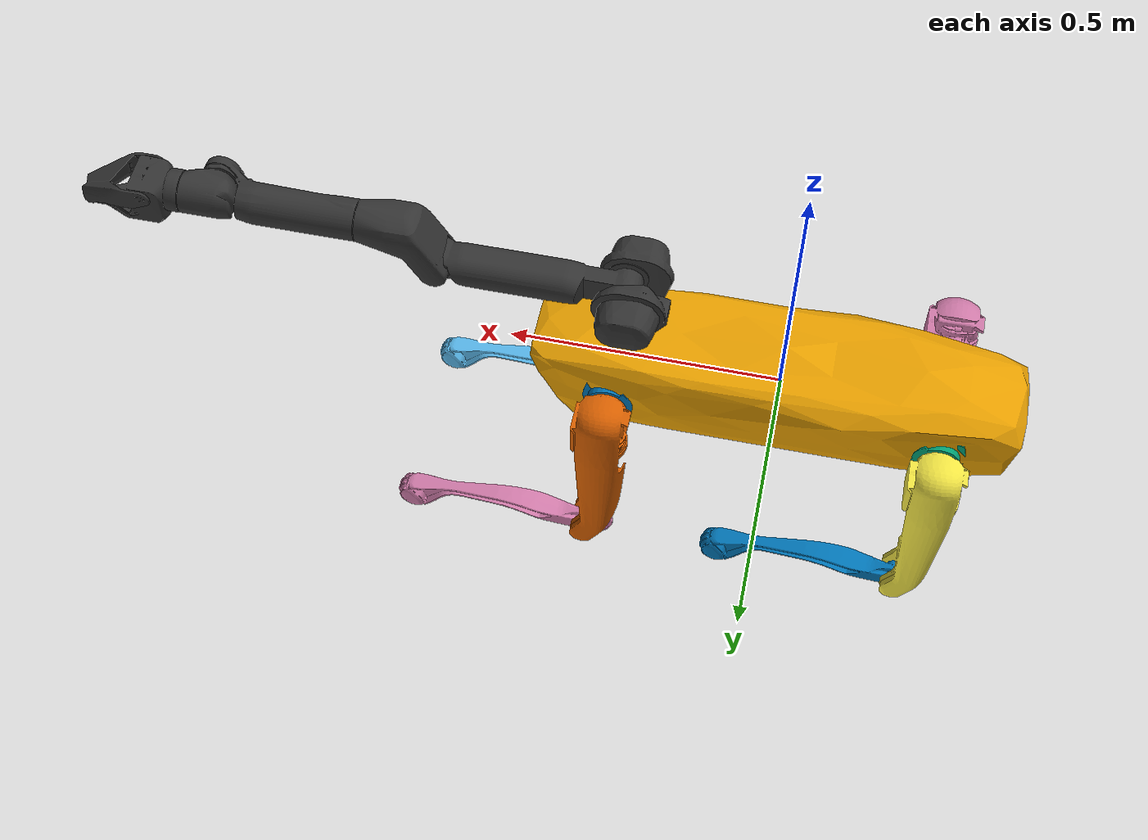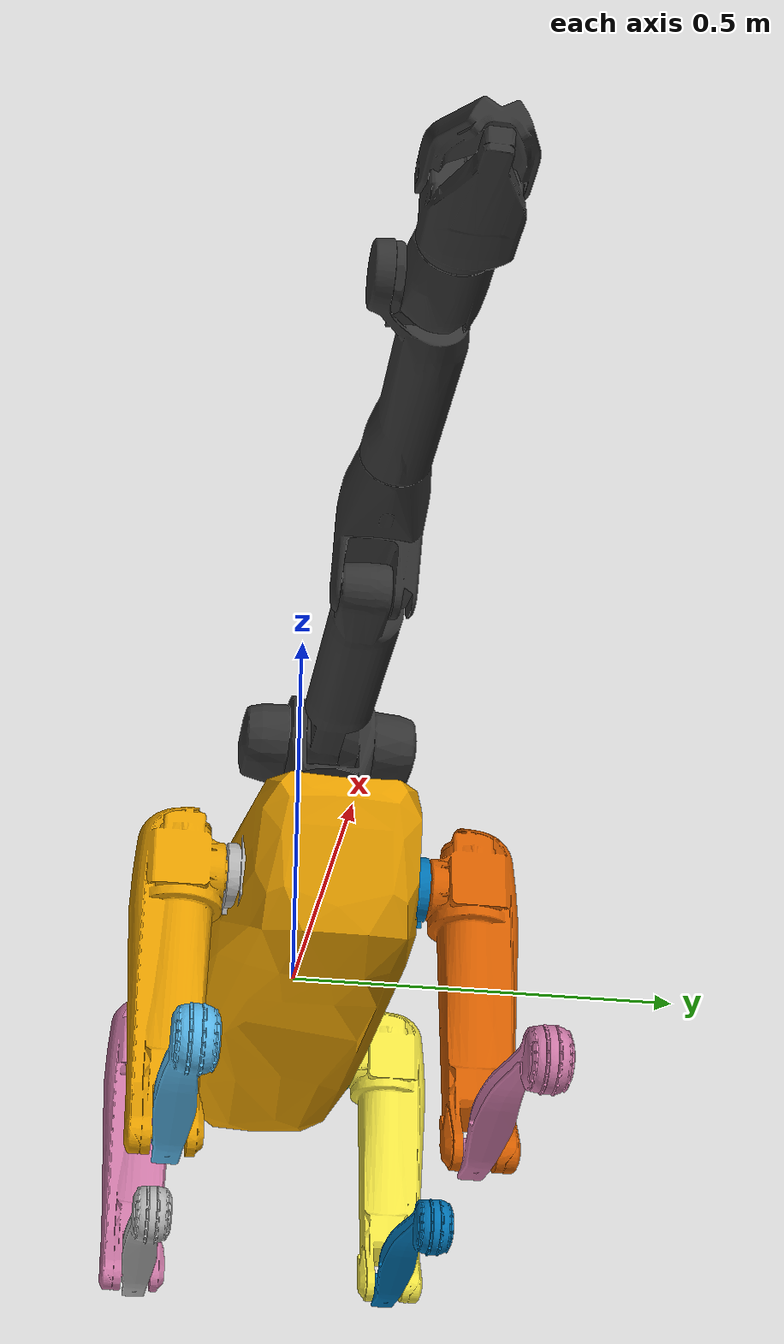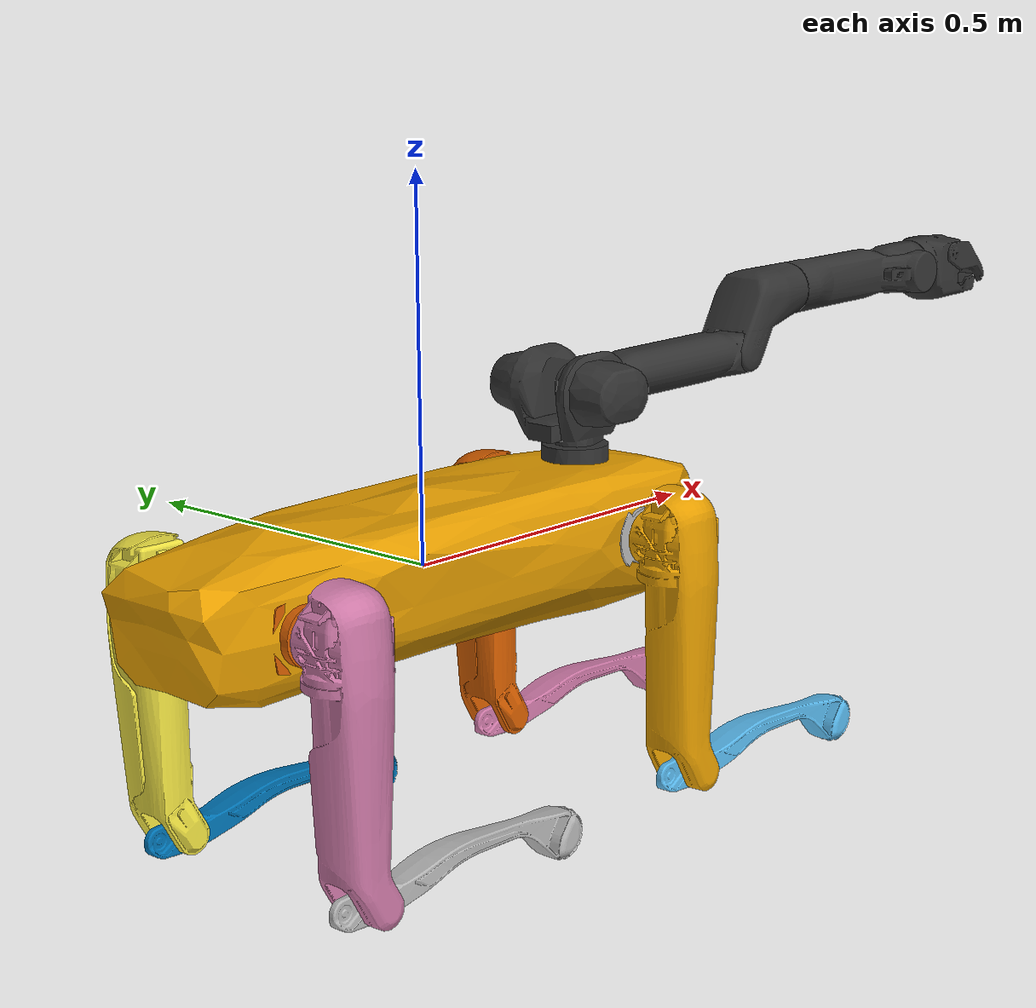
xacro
<?xml version="1.0" ?>
<robot name="spot_with_arm" xmlns:xacro="http://www.ros.org/wiki/xacro">

  <!-- Spot base -->
  <xacro:include filename="$(find spot_description)/urdf/spot.urdf.xacro" />

  <!-- Spot arm -->
  <xacro:include filename="$(find spot_description)/urdf/spot_arm.urdf" />
</robot>

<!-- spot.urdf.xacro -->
<robot name="spot" xmlns:xacro="http://www.ros.org/wiki/xacro">
    <link name="body">
        <visual>
            <geometry>
                <mesh filename="package://spot_description/meshes/base/visual/body.dae" />
            </geometry>
        </visual>
        <collision>
            <geometry>
                <mesh filename="package://spot_description/meshes/base/collision/body_collision.stl" />
            </geometry>
        </collision>
    </link>

    <link name="base_link">
        <inertial>
            <origin rpy="0.0 0.0 0.0" xyz="0.006394396536052227 -9.812158532440662e-05 0.0009113792330026627"/>
            <mass value="32.86"/>
            <inertia ixx="0.13143999874591827" ixy="0.0" ixz="0.0" iyy="0.13143999874591827" iyz="0.0" izz="0.13143999874591827"/>
        </inertial>
    </link>
    <joint name="base_link_joint" type="fixed">
        <origin xyz="0 0 0" rpy="0 0 0" />
        <parent link="body" />
        <child link="base_link" />
    </joint>

    <link name="front_rail">
        <inertial>
            <origin rpy="0. 0. 0." xyz="0. 0. 0."/>
            <mass value="1.0e-6"/>
            <inertia ixx="1.0e-9" ixy="0.0" ixz="0.0" iyy="1.0e-9" iyz="0.0" izz="1.0e-9"/>
        </inertial>
    </link>
    <joint name="front_rail_joint" type="fixed">
        <origin xyz="0.223 0 0.0805" rpy="0 0 0" />
        <parent link="body" />
        <child link="front_rail" />
    </joint>

    <link name="rear_rail">
        <inertial>
            <origin rpy="0. 0. 0." xyz="0. 0. 0."/>
            <mass value="1.0e-6"/>
            <inertia ixx="1.0e-9" ixy="0.0" ixz="0.0" iyy="1.0e-9" iyz="0.0" izz="1.0e-9"/>
        </inertial>
    </link>
    <joint name="rear_rail_joint" type="fixed">
        <origin xyz="-0.223 0 0.0805" rpy="0 0 0" />
        <parent link="body" />
        <child link="rear_rail" />
    </joint>

    <link name="front_left_hip">
        <visual>
            <geometry>
                <mesh filename="package://spot_description/meshes/base/visual/front_left_hip.dae" />
            </geometry>
        </visual>
        <collision>
            <geometry>
                <mesh filename="package://spot_description/meshes/base/collision/front_left_hip_collision.stl" />
            </geometry>
        </collision>
        <inertial>
            <origin rpy="-0.716521349312305 0.02956473059648479 0.03655230014702582" xyz="-0.005374345928430557 0.012841847725212574 9.875232353806496e-05"/>
            <mass value="1.68"/>
            <inertia ixx="0.0021147398873455382" ixy="0.0" ixz="0.0" iyy="0.0018129577956607131" iyz="0.0" izz="0.002265435737304666"/>
        </inertial>
    </link>
    <joint name="front_left_hip_x" type="revolute">
        <origin xyz="0.29785 0.05500 0.00000" rpy="0 0 0" />
        <axis xyz="1 0 0" />
        <parent link="body" />
        <child link="front_left_hip" />
        <limit effort="1000" velocity="1000.00" lower="-0.78539816339744827899" upper="0.78539816339744827899" />
    </joint>
    <link name="front_left_upper_leg">
        <visual>
            <geometry>
                <mesh filename="package://spot_description/meshes/base/visual/front_left_upper_leg.dae" />
            </geometry>
        </visual>
        <collision>
            <geometry>
                <mesh filename="package://spot_description/meshes/base/collision/front_left_upper_leg_collision.stl" />
            </geometry>
        </collision>
        <inertial>
            <origin rpy="-0.26437828203369795 -0.04853174570753804 0.024046963096353124" xyz="0.005142373498529196 -0.0024323679972440004 -0.12100915610790253"/>
            <mass value="2.34"/>
            <inertia ixx="0.02755964961185679" ixy="0.0" ixz="0.0" iyy="0.027354914287651046" iyz="0.0" izz="0.002848145546743553"/>
        </inertial>
    </link>
    <joint name="front_left_hip_y" type="revolute">
        <origin xyz="0.0 0.110945 0.0" rpy="0 0 0" />
        <axis xyz="0 1 0" />
        <parent link="front_left_hip" />
        <child link="front_left_upper_leg" />
        <limit effort="1000" velocity="1000.00" lower="-0.89884456477707963539" upper="2.2951079663725435509" />
    </joint>
    <link name="front_left_lower_leg">
        <visual>
            <geometry>
                <mesh filename="package://spot_description/meshes/base/visual/front_left_lower_leg.dae" />
            </geometry>
        </visual>
        <collision>
            <geometry>
                <mesh filename="package://spot_description/meshes/base/collision/front_left_lower_leg_collision.stl" />
            </geometry>
        </collision>
        <inertial>
            <origin rpy="-0.007266925694167092 -0.009591807116834161 0.00035255970529224356" xyz="0.00225794012658298 4.607596201822162e-05 -0.1800822913646698"/>
            <mass value="0.35"/>
            <inertia ixx="0.003999022654901177" ixy="0.0" ixz="0.0" iyy="0.0040503157598010785" iyz="0.0" izz="0.0001493402097647426"/>
        </inertial>
    </link>
    <joint name="front_left_knee" type="revolute">
        <origin xyz="0.025 0.000 -0.3205" rpy="0 0 0" />
        <axis xyz="0 1 0" />
        <parent link="front_left_upper_leg" />
        <child link="front_left_lower_leg" />
        <limit effort="1000" velocity="1000.00" lower="-2.7929" upper="-0.254801" />
    </joint>
    <link name="front_right_hip">
        <visual>
            <geometry>
                <mesh filename="package://spot_description/meshes/base/visual/front_right_hip.dae" />
            </geometry>
        </visual>
        <collision>
            <geometry>
                <mesh filename="package://spot_description/meshes/base/collision/front_right_hip_collision.stl" />
            </geometry>
        </collision>
        <inertial>
            <origin rpy="0.7165213493123055 -0.02956473059648479 0.03655230014702582" xyz="-0.005374345928430557 -0.012841847725212574 -9.875232353806496e-05"/>
            <mass value="1.68"/>
            <inertia ixx="0.0021147398873455382" ixy="0.0" ixz="0.0" iyy="0.0018129577956607131" iyz="0.0" izz="0.002265435737304666"/>
        </inertial>
    </link>
    <joint name="front_right_hip_x" type="revolute">
        <origin xyz="0.29785 -0.05500 0.00000" rpy="0 0 0" />
        <axis xyz="1 0 0" />
        <parent link="body" />
        <child link="front_right_hip" />
        <limit effort="1000" velocity="1000.00" lower="-0.78539816339744827899" upper="0.78539816339744827899" />
    </joint>
    <link name="front_right_upper_leg">
        <visual>
            <geometry>
                <mesh filename="package://spot_description/meshes/base/visual/front_right_upper_leg.dae" />
            </geometry>
        </visual>
        <collision>
            <geometry>
                <mesh filename="package://spot_description/meshes/base/collision/front_right_upper_leg_collision.stl" />
            </geometry>
        </collision>
        <inertial>
            <origin rpy="0.2643905306958363 -0.04853174688302708 -0.024046943559834943" xyz="0.005142373498529196 0.0024323677644133568 -0.12100915610790253"/>
            <mass value="2.34"/>
            <inertia ixx="0.02755964678927691" ixy="0.0" ixz="0.0" iyy="0.02735491706466737" iyz="0.0" izz="0.0028481453594764797"/>
        </inertial>
    </link>
    <joint name="front_right_hip_y" type="revolute">
        <origin xyz="0.0 -0.110945 0.0" rpy="0 0 0" />
        <axis xyz="0 1 0" />
        <parent link="front_right_hip" />
        <child link="front_right_upper_leg" />
        <limit effort="1000" velocity="1000.00" lower="-0.89884456477707963539" upper="2.2951079663725435509" />
    </joint>
    <link name="front_right_lower_leg">
        <visual>
            <geometry>
                <mesh filename="package://spot_description/meshes/base/visual/front_right_lower_leg.dae" />
            </geometry>
        </visual>
        <collision>
            <geometry>
                <mesh filename="package://spot_description/meshes/base/collision/front_right_lower_leg_collision.stl" />
            </geometry>
        </collision>
        <inertial>
            <origin rpy="-0.007266925694167092 -0.009591807116834161 0.00035255970529224356" xyz="0.00225794012658298 4.607596201822162e-05 -0.1800822913646698"/>
            <mass value="0.35"/>
            <inertia ixx="0.003999022654901177" ixy="0.0" ixz="0.0" iyy="0.0040503157598010785" iyz="0.0" izz="0.0001493402097647426"/>
        </inertial>
    </link>
    <joint name="front_right_knee" type="revolute">
        <origin xyz="0.025 0.000 -0.3205" rpy="0 0 0" />
        <axis xyz="0 1 0" />
        <parent link="front_right_upper_leg" />
        <child link="front_right_lower_leg" />
        <limit effort="1000" velocity="1000.00" lower="-2.7929" upper="-0.247563" />
    </joint>
    <link name="rear_left_hip">
        <visual>
            <geometry>
                <mesh filename="package://spot_description/meshes/base/visual/rear_left_hip.dae" />
            </geometry>
        </visual>
        <collision>
            <geometry>
                <mesh filename="package://spot_description/meshes/base/collision/rear_left_hip_collision.stl" />
            </geometry>
        </collision>
        <inertial>
            <origin rpy="0.7165213493123055 -0.02956473059648479 0.03655230014702582" xyz="-0.005374345928430557 -0.012841847725212574 -9.875232353806496e-05"/>
            <mass value="1.68"/>
            <inertia ixx="0.0021147398873455382" ixy="0.0" ixz="0.0" iyy="0.0018129577956607131" iyz="0.0" izz="0.002265435737304666"/>
        </inertial>
    </link>
    <joint name="rear_left_hip_x" type="revolute">
        <origin xyz="-0.29785 0.05500 0.00000" rpy="0 0 0" />
        <axis xyz="1 0 0" />
        <parent link="body" />
        <child link="rear_left_hip" />
        <limit effort="1000" velocity="1000.00" lower="-0.78539816339744827899" upper="0.78539816339744827899" />
    </joint>
    <link name="rear_left_upper_leg">
        <visual>
            <geometry>
                <mesh filename="package://spot_description/meshes/base/visual/rear_left_upper_leg.dae" />
            </geometry>
        </visual>
        <collision>
            <geometry>
                <mesh filename="package://spot_description/meshes/base/collision/rear_left_upper_leg_collision.stl" />
            </geometry>
        </collision>
        <inertial>
            <origin rpy="-0.26437828203369795 -0.04853174570753804 0.024046963096353124" xyz="0.005142373498529196 -0.0024323679972440004 -0.12100915610790253"/>
            <mass value="2.34"/>
            <inertia ixx="0.02755964961185679" ixy="0.0" ixz="0.0" iyy="0.027354914287651046" iyz="0.0" izz="0.002848145546743553"/>
        </inertial>
    </link>
    <joint name="rear_left_hip_y" type="revolute">
        <origin xyz="0.0 0.110945 0.0" rpy="0 0 0" />
        <axis xyz="0 1 0" />
        <parent link="rear_left_hip" />
        <child link="rear_left_upper_leg" />
        <limit effort="1000" velocity="1000.00" lower="-0.89884456477707963539" upper="2.2951079663725435509" />
    </joint>
    <link name="rear_left_lower_leg">
        <visual>
            <geometry>
                <mesh filename="package://spot_description/meshes/base/visual/rear_left_lower_leg.dae" />
            </geometry>
        </visual>
        <collision>
            <geometry>
                <mesh filename="package://spot_description/meshes/base/collision/rear_left_lower_leg_collision.stl" />
            </geometry>
        </collision>
        <inertial>
            <origin rpy="-0.007266925694167092 -0.009591807116834161 0.00035255970529224356" xyz="0.00225794012658298 4.607596201822162e-05 -0.1800822913646698"/>
            <mass value="0.35"/>
            <inertia ixx="0.003999022654901177" ixy="0.0" ixz="0.0" iyy="0.0040503157598010785" iyz="0.0" izz="0.0001493402097647426"/>
        </inertial>
    </link>
    <joint name="rear_left_knee" type="revolute">
        <origin xyz="0.025 0.000 -0.3205" rpy="0 0 0" />
        <axis xyz="0 1 0" />
        <parent link="rear_left_upper_leg" />
        <child link="rear_left_lower_leg" />
        <limit effort="1000" velocity="1000.00" lower="-2.7929" upper="-0.267153" />
    </joint>
    <link name="rear_right_hip">
        <visual>
            <geometry>
                <mesh filename="package://spot_description/meshes/base/visual/rear_right_hip.dae" />
            </geometry>
        </visual>
        <collision>
            <geometry>
                <mesh filename="package://spot_description/meshes/base/collision/rear_right_hip_collision.stl" />
            </geometry>
        </collision>
        <inertial>
            <origin rpy="0.7165213493123055 -0.02956473059648479 0.03655230014702582" xyz="-0.005374345928430557 -0.012841847725212574 -9.875232353806496e-05"/>
            <mass value="1.68"/>
            <inertia ixx="0.0021147398873455382" ixy="0.0" ixz="0.0" iyy="0.0018129577956607131" iyz="0.0" izz="0.002265435737304666"/>
        </inertial>
    </link>
    <joint name="rear_right_hip_x" type="revolute">
        <origin xyz="-0.29785 -0.05500 0.00000" rpy="0 0 0" />
        <axis xyz="1 0 0" />
        <parent link="body" />
        <child link="rear_right_hip" />
        <limit effort="1000" velocity="1000.00" lower="-0.78539816339744827899" upper="0.78539816339744827899" />
    </joint>
    <link name="rear_right_upper_leg">
        <visual>
            <geometry>
                <mesh filename="package://spot_description/meshes/base/visual/rear_right_upper_leg.dae" />
            </geometry>
        </visual>
        <collision>
            <geometry>
                <mesh filename="package://spot_description/meshes/base/collision/rear_right_upper_leg_collision.stl" />
            </geometry>
        </collision>
        <inertial>
            <origin rpy="0.2643905306958363 -0.04853174688302708 -0.024046943559834943" xyz="0.005142373498529196 0.0024323677644133568 -0.12100915610790253"/>
            <mass value="2.34"/>
            <inertia ixx="0.02755964678927691" ixy="0.0" ixz="0.0" iyy="0.02735491706466737" iyz="0.0" izz="0.0028481453594764797"/>
        </inertial>
    </link>
    <joint name="rear_right_hip_y" type="revolute">
        <origin xyz="0.0 -0.110945 0.0" rpy="0 0 0" />
        <axis xyz="0 1 0" />
        <parent link="rear_right_hip" />
        <child link="rear_right_upper_leg" />
        <limit effort="1000" velocity="1000.00" lower="-0.89884456477707963539" upper="2.2951079663725435509" />
    </joint>
    <link name="rear_right_lower_leg">
        <visual>
            <geometry>
                <mesh filename="package://spot_description/meshes/base/visual/rear_right_lower_leg.dae" />
            </geometry>
        </visual>
        <collision>
            <geometry>
                <mesh filename="package://spot_description/meshes/base/collision/rear_right_lower_leg_collision.stl" />
            </geometry>
        </collision>
        <inertial>
            <origin rpy="-0.007266925694167092 -0.009591807116834161 0.00035255970529224356" xyz="0.00225794012658298 4.607596201822162e-05 -0.1800822913646698"/>
            <mass value="0.35"/>
            <inertia ixx="0.003999022654901177" ixy="0.0" ixz="0.0" iyy="0.0040503157598010785" iyz="0.0" izz="0.0001493402097647426"/>
        </inertial>
    </link>
    <joint name="rear_right_knee" type="revolute">
        <origin xyz="0.025 0.000 -0.3205" rpy="0 0 0" />
        <axis xyz="0 1 0" />
        <parent link="rear_right_upper_leg" />
        <child link="rear_right_lower_leg" />
        <limit effort="1000" velocity="1000.00" lower="-2.7929" upper="-0.257725" />
    </joint>

    <!-- Standard accessories. -->

    <!-- Optional custom includes. -->
</robot>

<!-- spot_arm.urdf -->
<robot name="spot_arm">
  <link name="arm_link_sh0">
    <visual>
      <origin xyz="0 0 0" rpy="0 0 0"/>
      <geometry>
        <mesh filename="package://spot_description/meshes/arm/visual/arm_link_sh0.stl"/>
      </geometry>
      <material name="arm_link_sh0"> <color rgba="0.2 0.2 0.2 1"/></material>
    </visual>
    <collision>
      <geometry>
        <mesh filename="package://spot_description/meshes/arm/collision/arm_link_sh0.stl" />
      </geometry>
    </collision>
    <inertial>
      <origin rpy="0.0013490340912847287 -0.15433618253071657 0.0066354181456347305" xyz="-0.012372709810733795 -4.5211403630673885e-05 -0.02103196457028389"/>
      <mass value="2.3364000000000003"/>
      <inertia ixx="0.009014303010689815" ixy="0.0" ixz="0.0" iyy="0.005835102417829581" iyz="0.0" izz="0.00778747846359954"/>
    </inertial>
  </link>
  <joint name="arm_sh0" type="revolute">
    <origin xyz="0.292 0.0 0.188" rpy="0 0 0"/>
    <axis xyz="0 0 1"/>
    <parent link="body"/>
    <child link="arm_link_sh0"/>
    <limit effort="1000" velocity="1000.00" lower="-2.61799387799149441136" upper="3.14159265358979311599"/>
  </joint>

  <link name="arm_link_sh1">
    <visual>
      <origin xyz="0 0 0" rpy="0 0 0"/>
      <geometry>
        <mesh filename="package://spot_description/meshes/arm/visual/arm_link_sh1.stl"/>
      </geometry>
      <material name="arm_link_sh1"> <color rgba="0.2 0.2 0.2 1"/></material>
    </visual>
    <collision>
      <geometry>
        <mesh filename="package://spot_description/meshes/arm/collision/arm_link_sh1.stl" />
      </geometry>
    </collision>
    <inertial>
      <origin rpy="0.009910032200701302 -0.5123007314267984 0.002209016500439809" xyz="2.4176391889341176e-05 2.4116111490002368e-06 -1.0059113265015185e-05"/>
      <mass value="0.2596"/>
      <inertia ixx="0.00020292766231464653" ixy="0.0" ixz="0.0" iyy="0.00017078637725384855" iyz="0.0" izz="0.00020384964230406682"/>
    </inertial>
  </link>
  <joint name="arm_sh1" type="revolute">
    <origin xyz="0.0 0.0 0.0" rpy="0 0 0"/>
    <axis xyz="0 1 0"/>
    <parent link="arm_link_sh0"/>
    <child link="arm_link_sh1"/>
    <limit effort="1000" velocity="1000.00" lower="-3.14159265358979311599" upper="0.52359877559829881565"/>
  </joint>

  <link name="arm_link_hr0">
    <visual>
      <origin xyz="0 0 0" rpy="0 0 0"/>
      <geometry>
        <mesh filename="package://spot_description/meshes/arm/visual/arm_link_hr0.stl"/>
      </geometry>
      <material name="arm_link_hr0"> <color rgba="0.2 0.2 0.2 1"/></material>
    </visual>
    <collision>
      <geometry>
        <mesh filename="package://spot_description/meshes/arm/collision/arm_link_hr0.stl" />
      </geometry>
    </collision>
    <inertial>
      <origin rpy="-0.01179850657706405 0.0002834144901480151 -0.02372295500868482" xyz="0.17047011852264404 -0.0019251034827902913 4.483893280848861e-05"/>
      <mass value="1e-06"/>
      <inertia ixx="6.312631747339145e-10" ixy="0.0" ixz="0.0" iyy="1.1487063558949979e-08" iyz="0.0" izz="1.161105128440526e-08"/>
    </inertial>
  </link>
  <joint name="arm_hr0" type="fixed">
    <origin xyz="0.0 0.0 0.0" rpy="0 0 0"/>
    <axis xyz="1 0 0"/>
    <parent link="arm_link_sh1"/>
    <child link="arm_link_hr0"/>
    <limit effort="1000" velocity="1000.00" lower="-1e6" upper="1e6"/>
  </joint>

  <link name="arm_link_el0">
    <visual>
      <origin xyz="0 0 0" rpy="0 0 0"/>
      <geometry>
        <mesh filename="package://spot_description/meshes/arm/visual/arm_link_el0.stl"/>
      </geometry>
      <material name="arm_link_el0"> <color rgba="0.2 0.2 0.2 1"/></material>
    </visual>
    <collision>
      <geometry>
        <mesh filename="package://spot_description/meshes/arm/collision/arm_link_el0.stl" />
      </geometry>
    </collision>
    <inertial>
      <origin rpy="-0.004185887288594259 -0.6136269547775202 -0.0004619387581783485" xyz="0.0553741455078125 0.00023603376757819206 0.04827198013663292"/>
      <mass value="0.725"/>
      <inertia ixx="0.0008215365829160558" ixy="0.0" ixz="0.0" iyy="0.0020047889807066404" iyz="0.0" izz="0.0019722797759789395"/>
    </inertial>
  </link>
  <joint name="arm_el0" type="revolute">
    <origin xyz="0.3385 0 0" rpy="0 0 0"/>
    <axis xyz="0 1 0"/>
    <parent link="arm_link_hr0"/>
    <child link="arm_link_el0"/>
    <limit effort="1000" velocity="1000.00" lower="0" upper="3.14159265358979311599"/>
  </joint>

  <link name="arm_link_el1">
    <visual>
      <origin xyz="0 0 0" rpy="0 0 0"/>
      <geometry>
        <mesh filename="package://spot_description/meshes/arm/visual/arm_link_el1.stl"/>
      </geometry>
      <material name="arm_link_el1"> <color rgba="0.2 0.2 0.2 1"/></material>
    </visual>
    <collision>
      <geometry>
        <mesh filename="package://spot_description/meshes/arm/collision/arm_link_el1.stl" />
      </geometry>
    </collision>
    <inertial>
      <origin rpy="-0.15027374227250867 -0.0007874585461915551 0.003728225436950172" xyz="-0.1257835328578949 -0.013684478588402271 0.00010157923679798841"/>
      <mass value="0.725"/>
      <inertia ixx="0.0006254807525240598" ixy="0.0" ixz="0.0" iyy="0.004402454711936095" iyz="0.0" izz="0.004515915146038191"/>
    </inertial>
  </link>
  <joint name="arm_el1" type="revolute">
    <origin xyz="0.40330 0.0 0.0750" rpy="0 0 0"/>
    <axis xyz="1 0 0"/>
    <parent link="arm_link_el0"/>
    <child link="arm_link_el1"/>
    <limit effort="1000" velocity="1000.00" lower="-2.79252680319092716487" upper="2.79252680319092716487"/>
  </joint>

  <link name="arm_link_wr0">
    <visual>
      <origin xyz="0 0 0" rpy="0 0 0"/>
      <geometry>
        <mesh filename="package://spot_description/meshes/arm/visual/arm_link_wr0.stl"/>
      </geometry>
      <material name="arm_link_wr0"> <color rgba="0.2 0.2 0.2 1"/></material>
    </visual>
    <collision>
      <geometry>
        <mesh filename="package://spot_description/meshes/arm/collision/arm_link_wr0.stl" />
      </geometry>
    </collision>
    <inertial>
      <origin rpy="-0.4951534907966386 0.0033720434077784134 0.020027599337697932" xyz="0.008210677653551102 -0.012051000259816647 3.143483627354726e-05"/>
      <mass value="0.98"/>
      <inertia ixx="0.0009851320696685427" ixy="0.0" ixz="0.0" iyy="0.0008916145765810678" iyz="0.0" izz="0.0012354892751854467"/>
    </inertial>
  </link>
  <joint name="arm_wr0" type="revolute">
    <origin xyz="0.0 0.0 0.0" rpy="0 0 0"/>
    <axis xyz="0 1 0"/>
    <parent link="arm_link_el1"/>
    <child link="arm_link_wr0"/>
    <limit effort="1000" velocity="1000.00" lower="-1.83259571459404613236" upper="1.83259571459404613236"/>
  </joint>

  <link name="arm_link_wr1">
    <visual>
      <origin xyz="0 0 0" rpy="0 0 0"/>
      <geometry>
        <mesh filename="package://spot_description/meshes/arm/visual/arm_link_wr1.stl"/>
      </geometry>
      <material name="arm_link_wr1"> <color rgba="0.2 0.2 0.2 1"/></material>
    </visual>
    <collision>
      <geometry>
        <mesh filename="package://spot_description/meshes/arm/collision/arm_link_wr1.stl" />
      </geometry>
    </collision>
    <inertial>
      <origin rpy="0.006393076449033863 0.2928526604761865 -0.022814984050994802" xyz="0.12516802549362183 0.00010137435310753062 -0.013997982256114483"/>
      <mass value="0.785"/>
      <inertia ixx="0.00076741362048185" ixy="0.0" ixz="0.0" iyy="0.0017628124054271809" iyz="0.0" izz="0.0016818105865345951"/>
    </inertial>
  </link>
  <joint name="arm_wr1" type="revolute">
    <origin xyz="0.0 0.0 0.0" rpy="0 0 0"/>
    <axis xyz="1 0 0"/>
    <parent link="arm_link_wr0"/>
    <child link="arm_link_wr1"/>
    <limit effort="1000" velocity="1000.00" lower="-2.87979326579064354163" upper="2.87979326579064354163"/>
  </joint>

  <link name="arm_link_fngr">
    <visual>
      <origin xyz="0 0 0" rpy="0 0 0"/>
      <geometry>
        <mesh filename="package://spot_description/meshes/arm/visual/arm_link_fngr.stl"/>
      </geometry>
      <material name="arm_link_fngr"> <color rgba="0.2 0.2 0.2 1"/></material>
    </visual>
    <collision>
      <geometry>
        <mesh filename="package://spot_description/meshes/arm/collision/arm_link_fngr.stl" />
      </geometry>
    </collision>
    <inertial>
      <origin rpy="0.0003416659657240473 0.3751670012784243 -0.004058661249495721" xyz="0.04787873849272728 -0.00020676758140325546 -0.01628788933157921"/>
      <mass value="0.2"/>
      <inertia ixx="0.0001439963634171048" ixy="0.0" ixz="0.0" iyy="0.0003007126997998294" iyz="0.0" izz="0.0003912783268020657"/>
    </inertial>
  </link>
  <joint name="arm_f1x" type="revolute">
    <origin xyz="0.11745 0 0.014820" rpy="0 0 0"/>
    <axis xyz="0.0 1.0 0.0"/>
    <parent link="arm_link_wr1"/>
    <child link="arm_link_fngr"/>
    <limit effort="1000" velocity="1000.00" lower="-1.57" upper="0.0"/>
  </joint>
</robot>
